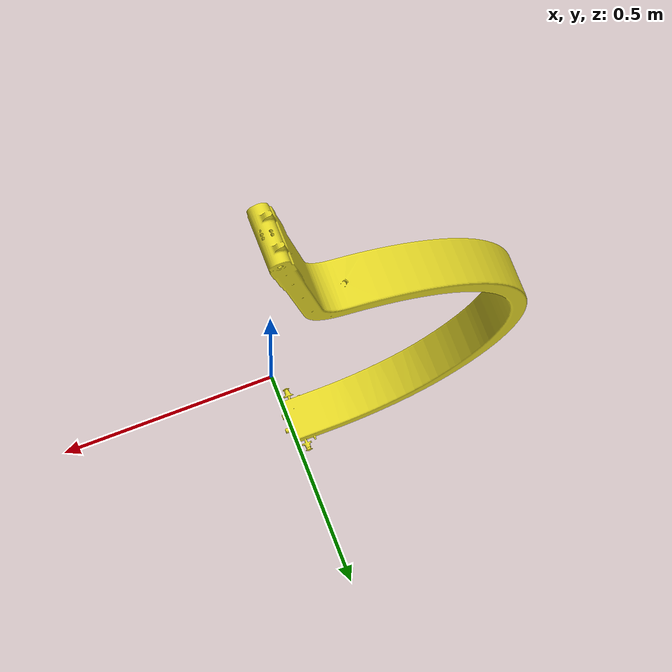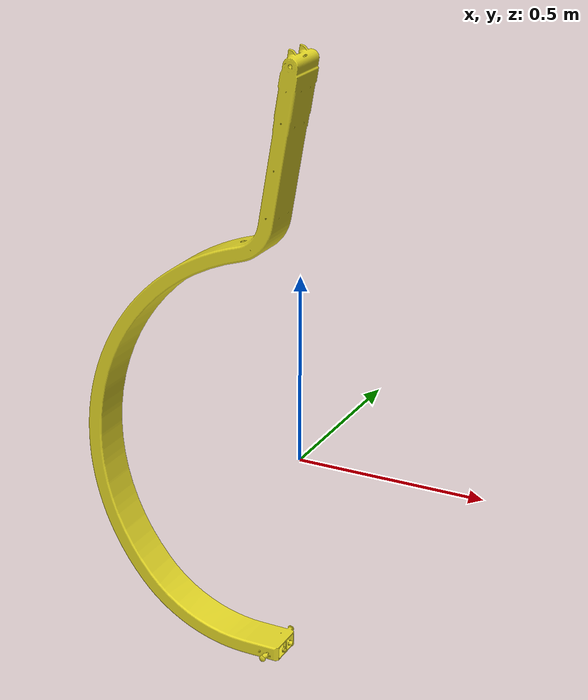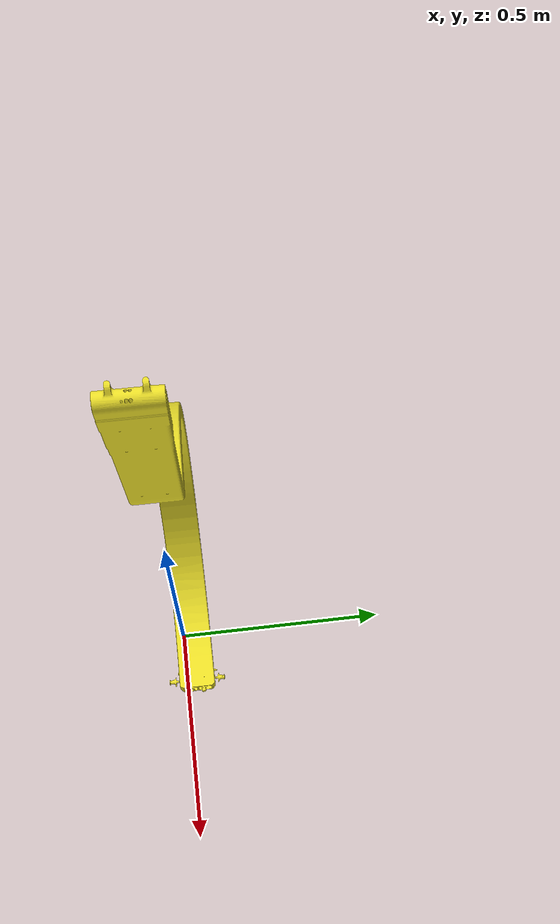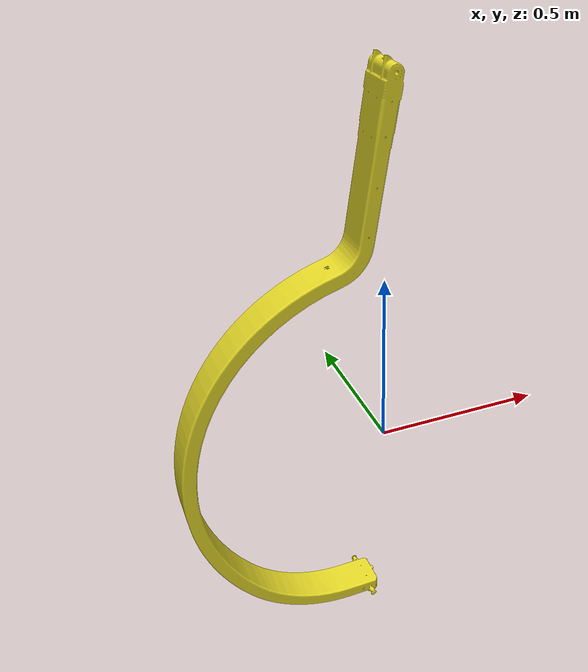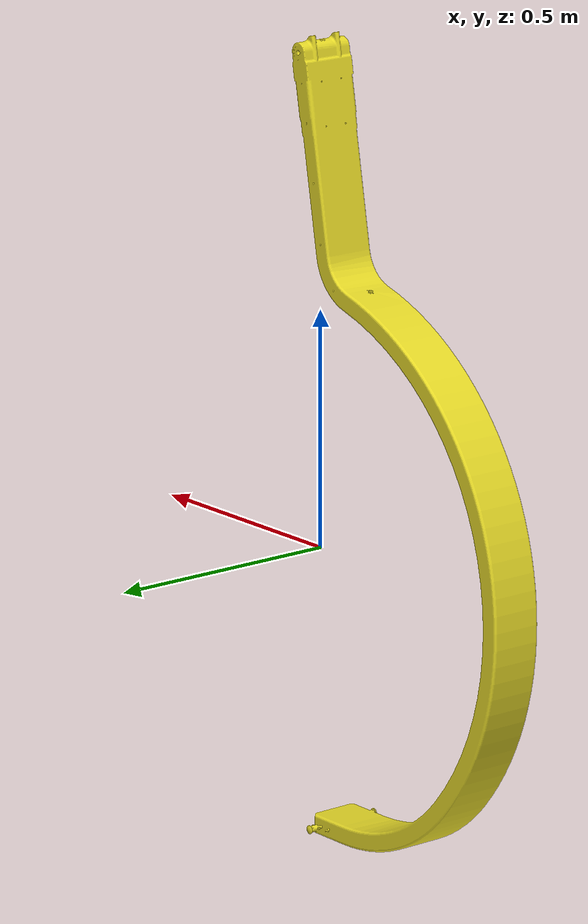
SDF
<?xml version="1.0" ?>

  <sdf version="1.5">
    <model name="tsduav_t4_link">

      <link name="link_base">
      <pose>0 0 0 0 0 0</pose>
      <inertial>
        <pose>0 0 0 0 0 0</pose>
        <mass>4.2</mass>
        <inertia>
          <ixx>1.01</ixx>
          <iyy>1.01</iyy>
          <izz>0.5</izz>
          <ixy>0</ixy>
          <ixz>0</ixz>
          <iyz>0</iyz>
        </inertia>
      </inertial>
      <collision name="link_base_collision">
        <pose>0 0 0 0 0 0</pose>
        <geometry>
          <mesh>
            <uri>model://tsduav_t4_link/meshes/link.STL</uri>
          </mesh>
        </geometry>
        <surface>
          <contact>
            <ode>
              <min_depth>0.001</min_depth>
            </ode>
          </contact>
          <friction>
            <ode />
          </friction>
        </surface>
      </collision>
      <visual name="link_base_visual">
        <geometry>
          <mesh>
            <uri>model://tsduav_t4_link/meshes/link.STL</uri>
          </mesh>
        </geometry>
        <material>
          <script>
            <name>Gazebo/Yellow</name>
          </script>
        </material>
      </visual>
    </link>
</model>
</sdf>
